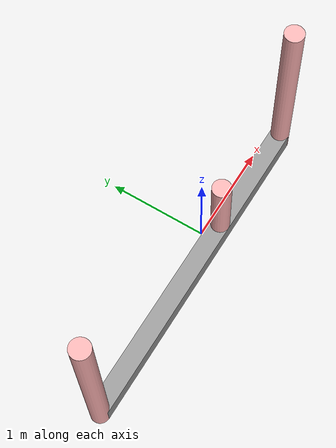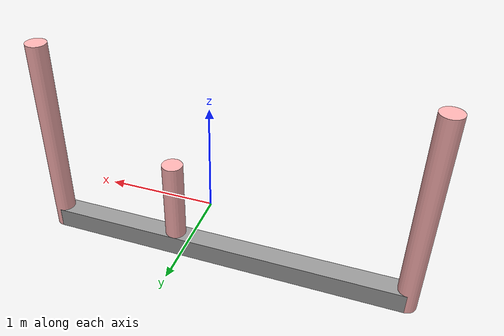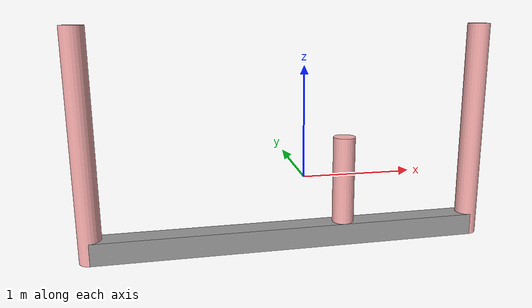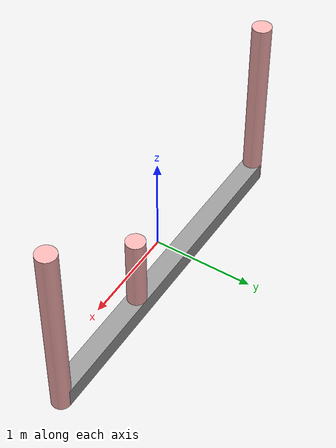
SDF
<?xml version='1.0'?>
<sdf version='1.6'>
  <model name='Gate'>
    <link name='link_0'>
      <pose frame=''>-0.125 0 -0.55 0 -0 0</pose>
      <inertial>
        <mass>1</mass>
        <inertia>
          <ixx>0.166667</ixx>
          <ixy>0</ixy>
          <ixz>0</ixz>
          <iyy>0.166667</iyy>
          <iyz>0</iyz>
          <izz>0.166667</izz>
        </inertia>
        <pose frame=''>0 0 0 0 -0 0</pose>
      </inertial>
      <self_collide>0</self_collide>
      <kinematic>0</kinematic>
      <gravity>1</gravity>
      <visual name='visual'>
        <pose frame=''>0 0 0 0 -0 0</pose>
        <geometry>
          <box>
            <size>3.5 0.2 0.2</size>
          </box>
        </geometry>
        <material>
          <lighting>1</lighting>
          <script>
            <uri>file://media/materials/scripts/gazebo.material</uri>
            <name>Gazebo/Grey</name>
          </script>
          <ambient>0 0 0 1</ambient>
          <diffuse>0 0 0 1</diffuse>
          <specular>0 0 0 1</specular>
          <emissive>0 0 0 1</emissive>
          <shader type='vertex'>
            <normal_map>__default__</normal_map>
          </shader>
        </material>
        <cast_shadows>1</cast_shadows>
        <transparency>0</transparency>
      </visual>
      <collision name='collision'>
        <laser_retro>0</laser_retro>
        <max_contacts>10</max_contacts>
        <pose frame=''>0 0 0 0 -0 0</pose>
        <geometry>
          <box>
            <size>3.5 0.2 0.2</size>
          </box>
        </geometry>
        <surface>
          <friction>
            <ode>
              <mu>1</mu>
              <mu2>1</mu2>
              <fdir1>0 0 0</fdir1>
              <slip1>0</slip1>
              <slip2>0</slip2>
            </ode>
            <torsional>
              <coefficient>1</coefficient>
              <patch_radius>0</patch_radius>
              <surface_radius>0</surface_radius>
              <use_patch_radius>1</use_patch_radius>
              <ode>
                <slip>0</slip>
              </ode>
            </torsional>
          </friction>
          <bounce>
            <restitution_coefficient>0</restitution_coefficient>
            <threshold>1e+06</threshold>
          </bounce>
          <contact>
            <collide_without_contact>0</collide_without_contact>
            <collide_without_contact_bitmask>1</collide_without_contact_bitmask>
            <collide_bitmask>1</collide_bitmask>
            <ode>
              <soft_cfm>0</soft_cfm>
              <soft_erp>0.2</soft_erp>
              <kp>1e+13</kp>
              <kd>1</kd>
              <max_vel>0.01</max_vel>
              <min_depth>0</min_depth>
            </ode>
            <bullet>
              <split_impulse>1</split_impulse>
              <split_impulse_penetration_threshold>-0.01</split_impulse_penetration_threshold>
              <soft_cfm>0</soft_cfm>
              <soft_erp>0.2</soft_erp>
              <kp>1e+13</kp>
              <kd>1</kd>
            </bullet>
          </contact>
        </surface>
      </collision>
    </link>
    <link name='link_1'>
      <pose frame=''>-1.875 0 0.35 0 -0 0</pose>
      <inertial>
        <mass>1</mass>
        <inertia>
          <ixx>0.145833</ixx>
          <ixy>0</ixy>
          <ixz>0</ixz>
          <iyy>0.145833</iyy>
          <iyz>0</iyz>
          <izz>0.125</izz>
        </inertia>
        <pose frame=''>0 0 0 0 -0 0</pose>
      </inertial>
      <self_collide>0</self_collide>
      <kinematic>0</kinematic>
      <visual name='visual'>
        <pose frame=''>0 0 0 0 -0 0</pose>
        <geometry>
          <cylinder>
            <radius>0.1</radius>
            <length>2</length>
          </cylinder>
        </geometry>
        <material>
          <lighting>1</lighting>
          <script>
            <uri>file://media/materials/scripts/gazebo.material</uri>
            <name>Gazebo/Grey</name>
          </script>
          <ambient>1 0.3 0.3 1</ambient>
          <diffuse>1 0.7 0.7 1</diffuse>
          <specular>1 0.01 0.01 1</specular>
          <emissive>1 0 0 1</emissive>
          <shader type='vertex'>
            <normal_map>__default__</normal_map>
          </shader>
        </material>
        <cast_shadows>1</cast_shadows>
        <transparency>0</transparency>
      </visual>
      <collision name='collision'>
        <laser_retro>0</laser_retro>
        <max_contacts>10</max_contacts>
        <pose frame=''>0 0 0 0 -0 0</pose>
        <geometry>
          <cylinder>
            <radius>0.1</radius>
            <length>2</length>
          </cylinder>
        </geometry>
        <surface>
          <friction>
            <ode>
              <mu>1</mu>
              <mu2>1</mu2>
              <fdir1>0 0 0</fdir1>
              <slip1>0</slip1>
              <slip2>0</slip2>
            </ode>
            <torsional>
              <coefficient>1</coefficient>
              <patch_radius>0</patch_radius>
              <surface_radius>0</surface_radius>
              <use_patch_radius>1</use_patch_radius>
              <ode>
                <slip>0</slip>
              </ode>
            </torsional>
          </friction>
          <bounce>
            <restitution_coefficient>0</restitution_coefficient>
            <threshold>1e+06</threshold>
          </bounce>
          <contact>
            <collide_without_contact>0</collide_without_contact>
            <collide_without_contact_bitmask>1</collide_without_contact_bitmask>
            <collide_bitmask>1</collide_bitmask>
            <ode>
              <soft_cfm>0</soft_cfm>
              <soft_erp>0.2</soft_erp>
              <kp>1e+13</kp>
              <kd>1</kd>
              <max_vel>0.01</max_vel>
              <min_depth>0</min_depth>
            </ode>
            <bullet>
              <split_impulse>1</split_impulse>
              <split_impulse_penetration_threshold>-0.01</split_impulse_penetration_threshold>
              <soft_cfm>0</soft_cfm>
              <soft_erp>0.2</soft_erp>
              <kp>1e+13</kp>
              <kd>1</kd>
            </bullet>
          </contact>
        </surface>
      </collision>
    </link>
    <link name='link_2'>
      <pose frame=''>1.625 0 0.35 0 -0 0</pose>
      <inertial>
        <mass>1</mass>
        <inertia>
          <ixx>0.145833</ixx>
          <ixy>0</ixy>
          <ixz>0</ixz>
          <iyy>0.145833</iyy>
          <iyz>0</iyz>
          <izz>0.125</izz>
        </inertia>
        <pose frame=''>0 0 0 0 -0 0</pose>
      </inertial>
      <self_collide>0</self_collide>
      <kinematic>0</kinematic>
      <visual name='visual'>
        <pose frame=''>0 0 0 0 -0 0</pose>
        <geometry>
          <cylinder>
            <radius>0.1</radius>
            <length>2</length>
          </cylinder>
        </geometry>
        <material>
          <lighting>1</lighting>
          <script>
            <uri>file://media/materials/scripts/gazebo.material</uri>
            <name>Gazebo/Grey</name>
          </script>
          <ambient>1 0.3 0.3 1</ambient>
          <diffuse>1 0.7 0.7 1</diffuse>
          <specular>1 0.01 0.01 1</specular>
          <emissive>1 0 0 1</emissive>
          <shader type='vertex'>
            <normal_map>__default__</normal_map>
          </shader>
        </material>
        <cast_shadows>1</cast_shadows>
        <transparency>0</transparency>
      </visual>
      <collision name='collision'>
        <laser_retro>0</laser_retro>
        <max_contacts>10</max_contacts>
        <pose frame=''>0 0 0 0 -0 0</pose>
        <geometry>
          <cylinder>
            <radius>0.1</radius>
            <length>2</length>
          </cylinder>
        </geometry>
        <surface>
          <friction>
            <ode>
              <mu>1</mu>
              <mu2>1</mu2>
              <fdir1>0 0 0</fdir1>
              <slip1>0</slip1>
              <slip2>0</slip2>
            </ode>
            <torsional>
              <coefficient>1</coefficient>
              <patch_radius>0</patch_radius>
              <surface_radius>0</surface_radius>
              <use_patch_radius>1</use_patch_radius>
              <ode>
                <slip>0</slip>
              </ode>
            </torsional>
          </friction>
          <bounce>
            <restitution_coefficient>0</restitution_coefficient>
            <threshold>1e+06</threshold>
          </bounce>
          <contact>
            <collide_without_contact>0</collide_without_contact>
            <collide_without_contact_bitmask>1</collide_without_contact_bitmask>
            <collide_bitmask>1</collide_bitmask>
            <ode>
              <soft_cfm>0</soft_cfm>
              <soft_erp>0.2</soft_erp>
              <kp>1e+13</kp>
              <kd>1</kd>
              <max_vel>0.01</max_vel>
              <min_depth>0</min_depth>
            </ode>
            <bullet>
              <split_impulse>1</split_impulse>
              <split_impulse_penetration_threshold>-0.01</split_impulse_penetration_threshold>
              <soft_cfm>0</soft_cfm>
              <soft_erp>0.2</soft_erp>
              <kp>1e+13</kp>
              <kd>1</kd>
            </bullet>
          </contact>
        </surface>
      </collision>
    </link>
    <link name='link_3'>
      <pose frame=''>0.375 0 -0.15 0 -0 0</pose>
      <inertial>
        <mass>1</mass>
        <inertia>
          <ixx>0.145833</ixx>
          <ixy>0</ixy>
          <ixz>0</ixz>
          <iyy>0.145833</iyy>
          <iyz>0</iyz>
          <izz>0.125</izz>
        </inertia>
        <pose frame=''>0 0 0 0 -0 0</pose>
      </inertial>
      <self_collide>0</self_collide>
      <kinematic>0</kinematic>
      <visual name='visual'>
        <pose frame=''>0 0 0 0 -0 0</pose>
        <geometry>
          <cylinder>
            <radius>0.1</radius>
            <length>1</length>
          </cylinder>
        </geometry>
        <material>
          <lighting>1</lighting>
          <script>
            <uri>file://media/materials/scripts/gazebo.material</uri>
            <name>Gazebo/Grey</name>
          </script>
          <ambient>1 0.3 0.3 1</ambient>
          <diffuse>1 0.7 0.7 1</diffuse>
          <specular>1 0.01 0.01 1</specular>
          <emissive>1 0 0 1</emissive>
          <shader type='vertex'>
            <normal_map>__default__</normal_map>
          </shader>
        </material>
        <cast_shadows>1</cast_shadows>
        <transparency>0</transparency>
      </visual>
      <collision name='collision'>
        <laser_retro>0</laser_retro>
        <max_contacts>10</max_contacts>
        <pose frame=''>0 0 0 0 -0 0</pose>
        <geometry>
          <cylinder>
            <radius>0.1</radius>
            <length>1</length>
          </cylinder>
        </geometry>
        <surface>
          <friction>
            <ode>
              <mu>1</mu>
              <mu2>1</mu2>
              <fdir1>0 0 0</fdir1>
              <slip1>0</slip1>
              <slip2>0</slip2>
            </ode>
            <torsional>
              <coefficient>1</coefficient>
              <patch_radius>0</patch_radius>
              <surface_radius>0</surface_radius>
              <use_patch_radius>1</use_patch_radius>
              <ode>
                <slip>0</slip>
              </ode>
            </torsional>
          </friction>
          <bounce>
            <restitution_coefficient>0</restitution_coefficient>
            <threshold>1e+06</threshold>
          </bounce>
          <contact>
            <collide_without_contact>0</collide_without_contact>
            <collide_without_contact_bitmask>1</collide_without_contact_bitmask>
            <collide_bitmask>1</collide_bitmask>
            <ode>
              <soft_cfm>0</soft_cfm>
              <soft_erp>0.2</soft_erp>
              <kp>1e+13</kp>
              <kd>1</kd>
              <max_vel>0.01</max_vel>
              <min_depth>0</min_depth>
            </ode>
            <bullet>
              <split_impulse>1</split_impulse>
              <split_impulse_penetration_threshold>-0.01</split_impulse_penetration_threshold>
              <soft_cfm>0</soft_cfm>
              <soft_erp>0.2</soft_erp>
              <kp>1e+13</kp>
              <kd>1</kd>
            </bullet>
          </contact>
        </surface>
      </collision>
    </link>
    <joint name='link_0_JOINT_0' type='fixed'>
      <parent>link_0</parent>
      <child>link_1</child>
      <pose frame=''>0 0 0 0 -0 0</pose>
      <physics>
        <ode>
          <limit>
            <cfm>0</cfm>
            <erp>0.2</erp>
          </limit>
          <suspension>
            <cfm>0</cfm>
            <erp>0.2</erp>
          </suspension>
        </ode>
      </physics>
    </joint>
    <joint name='link_0_JOINT_1' type='fixed'>
      <parent>link_0</parent>
      <child>link_2</child>
      <pose frame=''>0 0 0 0 -0 0</pose>
      <physics>
        <ode>
          <limit>
            <cfm>0</cfm>
            <erp>0.2</erp>
          </limit>
          <suspension>
            <cfm>0</cfm>
            <erp>0.2</erp>
          </suspension>
        </ode>
      </physics>
    </joint>
    <joint name='link_0_JOINT_2' type='fixed'>
      <parent>link_0</parent>
      <child>link_3</child>
      <pose frame=''>0 0 0 0 -0 0</pose>
      <physics>
        <ode>
          <limit>
            <cfm>0</cfm>
            <erp>0.2</erp>
          </limit>
          <suspension>
            <cfm>0</cfm>
            <erp>0.2</erp>
          </suspension>
        </ode>
      </physics>
    </joint>
    <static>0</static>
    <allow_auto_disable>1</allow_auto_disable>
  </model>
</sdf>
